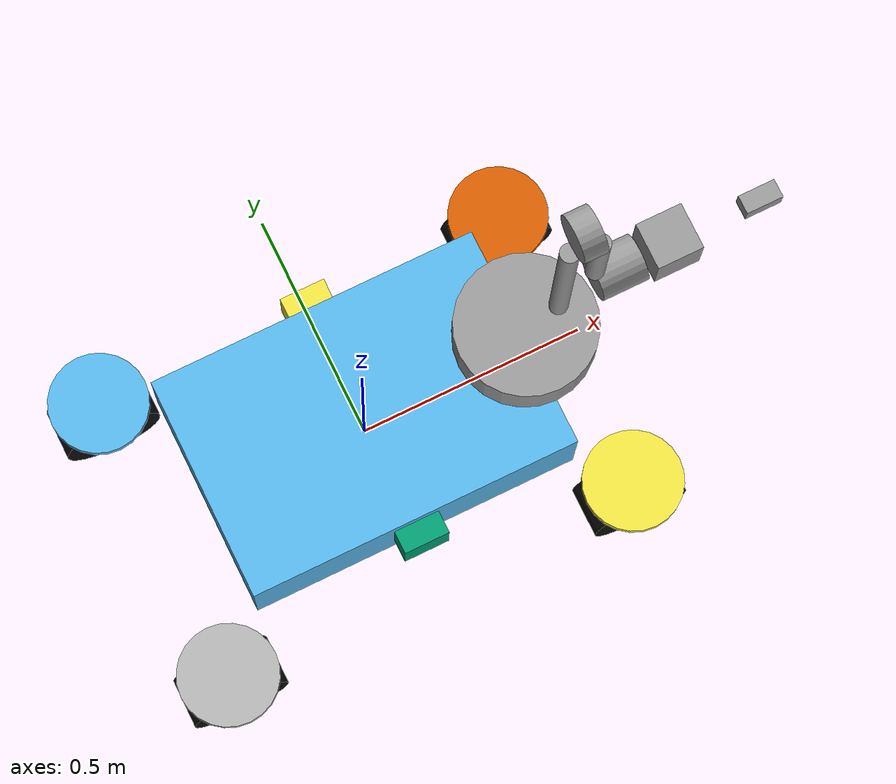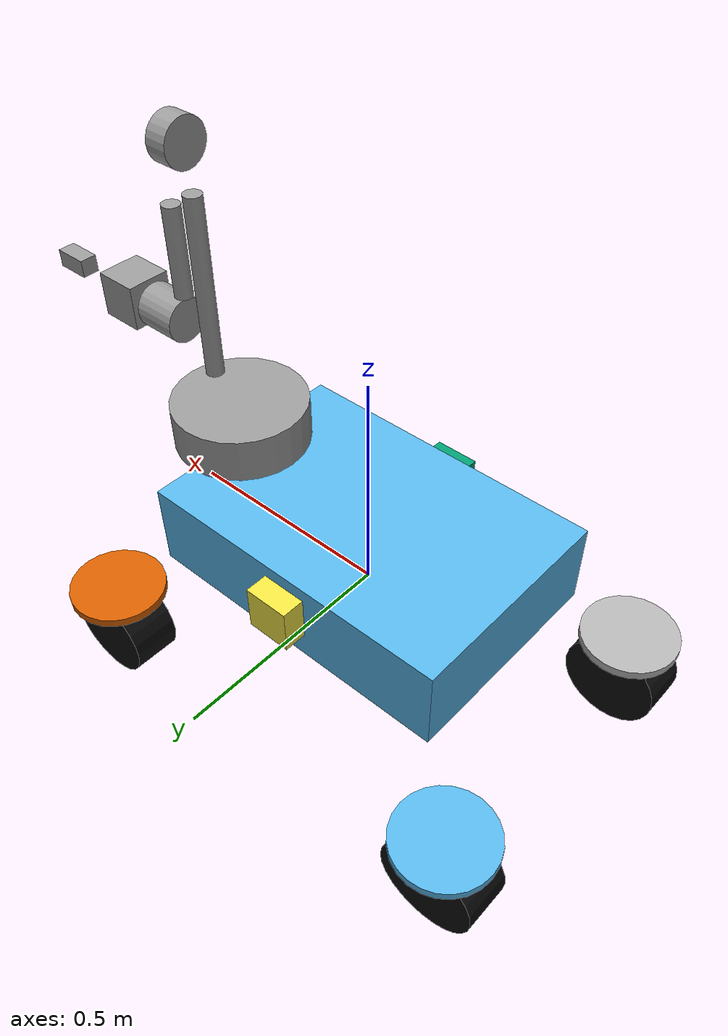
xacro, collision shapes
<?xml version="1.0"?>
<robot xmlns:xacro="http://www.ros.org/wiki/xacro" name="rover">
  <xacro:arg name="can_iface" default="can0"/>
  <xacro:arg name="ros2_control_mode" default="gazebo"/>
  <xacro:arg name="ros2_control_config" default="$(find mr2_rover_description)/config/controllers/rover_controllers.yaml"/>
  <xacro:arg name="enable_manipulator_module" default="true"/>
  <xacro:arg name="enable_autonomous_module" default="true"/>
  <xacro:property name="ros2_control_mode_value" value="$(arg ros2_control_mode)"/>
  <xacro:property name="ros2_control_config_value" value="$(arg ros2_control_config)"/>
  <xacro:property name="can_iface_value" value="$(arg can_iface)"/>
  <xacro:property name="enable_manipulator_module_value" value="$(arg enable_manipulator_module)"/>
  <xacro:property name="enable_autonomous_module_value" value="$(arg enable_autonomous_module)"/>
  <xacro:property name="rover_mesh_prefix" value="file://$(find mr2_rover_description)/meshes/rover"/>
  <xacro:property name="rover_mesh_scale" value="0.01"/>
  <material name="Rubber">
    <color rgba="0.05 0.05 0.05 1.0"/>
  </material>

  <!-- Include component macros -->
  <xacro:include filename="$(find mr2_rover_description)/urdf/rover_base.xacro"/>
  <xacro:include filename="$(find mr2_rover_description)/urdf/swerve_module.xacro"/>
  <xacro:include filename="$(find mr2_rover_description)/urdf/manipulator.xacro"/>
  <xacro:include filename="$(find mr2_rover_description)/ros2_control/rover_can.ros2_control.xacro"/>
  <xacro:include filename="$(find mr2_rover_description)/ros2_control/rover_gazebo.ros2_control.xacro"/>
  <xacro:include filename="$(find mr2_rover_description)/urdf/rover_gazebo_sensors.xacro"/>
  <!-- Chassis -->
  <xacro:rover_base enable_autonomous_module="${enable_autonomous_module_value}"/>
  <!-- Four modules -->
  <xacro:swerve_module prefix="fr" parent="right_rocker" xyz=" 0.476931 -0.0797 -0.18" direction="1"/>
  <xacro:swerve_module prefix="fl" parent="left_rocker" xyz=" 0.476931 0.0797 -0.18" direction="-1"/>
  <xacro:swerve_module prefix="rr" parent="right_rocker" xyz="-0.476931 -0.0797 -0.18" direction="1"/>
  <xacro:swerve_module prefix="rl" parent="left_rocker" xyz="-0.476931 0.0797 -0.18" direction="-1"/>
  <!-- Manipulator -->
  <xacro:if value="${enable_manipulator_module_value}">
    <xacro:manipulator/>
  </xacro:if>

  <xacro:if value="${ros2_control_mode_value == 'gazebo'}">
    <xacro:rover_gazebo_sensors ros2_control_config="${ros2_control_config_value}" enable_autonomous_module="${enable_autonomous_module_value}"/>
    <xacro:rover_gazebo_ros2_control name="GazeboSimSystem" ros2_control_config="${ros2_control_config_value}" enable_manipulator_module="${enable_manipulator_module_value}"/>
  </xacro:if>
  <xacro:if value="${ros2_control_mode_value == 'real_hardware'}">
    <xacro:rover_can_ros2_control name="RoverCanSystem" can_iface="${can_iface_value}" enable_manipulator_module="${enable_manipulator_module_value}"/>
  </xacro:if>
</robot>

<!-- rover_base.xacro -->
<robot xmlns:xacro="http://www.ros.org/wiki/xacro">
  <xacro:macro name="rover_base" params="length:=0.73 width:=0.491 height:=0.19 mass:=10 rocker_size:=0.1 rocker_mass:=0.5 joint_effort:=50 joint_vel:=2.0 joint_lim:=1.57 front_camera_pitch:=0.349066 enable_autonomous_module:=true">
    <xacro:property name="enable_autonomous_module_value" value="${enable_autonomous_module}"/>
    <!-- TODO: set as real dimension of the rover (#34) -->
    <link name="base_link"/>

    <link name="base_chassis">
      <inertial>
        <mass value="${mass}"/>
        <inertia ixx="${mass*(width*width + height*height)/12.0}" iyy="${mass*(length*length + height*height)/12.0}" izz="${mass*(length*length + width*width)/12.0}" ixy="0" ixz="0" iyz="0"/>
      </inertial>
      <visual>
        <geometry>
          <mesh filename="${rover_mesh_prefix}/base.obj"
                scale="${rover_mesh_scale} ${rover_mesh_scale} ${rover_mesh_scale}"/>
        </geometry>
        <origin xyz="0 0 0.05"/>
      </visual>
      <xacro:if value="${enable_autonomous_module_value}">
        <visual>
          <geometry>
            <mesh filename="${rover_mesh_prefix}/autonomous_module.obj"
                  scale="${rover_mesh_scale} ${rover_mesh_scale} ${rover_mesh_scale}"/>
          </geometry>
          <origin xyz="0 0 0.05"/>
        </visual>
      </xacro:if>
      <collision>
        <geometry>
          <box size="${length} ${width} ${height}"/>
        </geometry>
        <origin xyz="0 0 ${height/2.0}"/>
      </collision>
    </link>

    <joint name="base_link_to_chassis" type="fixed">
      <parent link="base_link"/>
      <child link="base_chassis"/>
      <origin xyz="0 0 0"/>
    </joint>

    <link name="right_rocker">
      <inertial>
        <origin xyz="0 -${width/2.0} 0"/>
        <mass value="${rocker_mass}"/>
        <inertia ixx="1e-3" ixy="0" ixz="0" iyy="1e-3" iyz="0" izz="1e-3"/>
      </inertial>
      <visual>
        <geometry>
          <mesh filename="${rover_mesh_prefix}/rocker.obj"
                scale="${rover_mesh_scale} ${rover_mesh_scale} ${rover_mesh_scale}"/>
        </geometry>
        <origin xyz="0 ${width/2.0} -0.01"/>
      </visual>
      <collision>
        <geometry>
          <box size="${rocker_size} ${rocker_size} ${rocker_size}"/>
        </geometry>
        <origin xyz="0 0 ${rocker_size/2.0}"/>
      </collision>
    </link>

    <joint name="right_rocker_joint" type="revolute">
      <parent link="base_chassis"/>
      <child link="right_rocker"/>
      <origin xyz="0 -${width/2.0} 0.06" rpy="0 0 0"/>
      <axis xyz="0 1 0"/>
      <dynamics damping="0.1" friction="0.0"/>
      <limit lower="-${joint_lim}" upper="${joint_lim}" effort="${joint_effort}" velocity="${joint_vel}"/>
      <mimic joint="left_rocker_joint" multiplier="-1" offset="0"/>
    </joint>

    <link name="left_rocker">
      <inertial>
        <origin xyz="0 ${width/2.0} 0"/>
        <mass value="${rocker_mass}"/>
        <inertia ixx="1e-3" ixy="0" ixz="0" iyy="1e-3" iyz="0" izz="1e-3"/>
      </inertial>
      <visual>
        <geometry>
          <mesh filename="${rover_mesh_prefix}/rocker.obj"
                scale="${rover_mesh_scale} ${rover_mesh_scale} ${rover_mesh_scale}"/>
        </geometry>
	<origin xyz="0 ${-width/2.0} -0.01" rpy="0 0 3.141592"/>
      </visual>
      <collision>
        <geometry>
          <box size="${rocker_size} ${rocker_size} ${rocker_size}"/>
        </geometry>
        <origin xyz="0 0 ${rocker_size/2.0}"/>
      </collision>
    </link>

    <joint name="left_rocker_joint" type="revolute">
      <parent link="base_chassis"/>
      <child link="left_rocker"/>
      <origin xyz="0 ${width/2.0} 0.06" rpy="0 0 0"/>
      <axis xyz="0 1 0"/>
      <dynamics damping="0.1" friction="0.0"/>
      <limit lower="-${joint_lim}" upper="${joint_lim}" effort="${joint_effort}" velocity="${joint_vel}"/>
    </joint>

    <joint name="right_rocker_joint_mimic" type="fixed">
      <parent link="base_chassis" />
      <child link="dummy_link" />
    </joint>

    <link name="dummy_link"/>

    <link name="right_gnss"/>
    <joint name="base_to_right_gnss" type="fixed">
      <origin xyz="0 ${-width/2.0} 0" rpy="0 0 0"/>
      <parent link="base_chassis"/>
      <child link="right_gnss"/>
    </joint>

    <link name="left_gnss"/>
    <joint name="base_to_left_gnss" type="fixed">
      <origin xyz="0 ${width/2.0} 0" rpy="0 0 0"/>
      <parent link="base_chassis"/>
      <child link="left_gnss"/>
    </joint>

    <link name="rgbd_camera"/>
    <joint name="base_to_rgbd_camera" type="fixed">
      <origin xyz="${length/2.0 + 0.14} 0 0" rpy="0 ${front_camera_pitch} 0"/> <!-- For Gazebo rendering, add 1cm to 0.14 -->
      <parent link="base_chassis"/>
      <child link="rgbd_camera"/>
    </joint>

    <xacro:if value="${enable_autonomous_module_value}">
      <link name="front_camera"/>
      <joint name="base_to_front_camera" type="fixed">
        <origin xyz="0.3476 0 0.438" rpy="0 0 0"/>
        <parent link="base_chassis"/>
        <child link="front_camera"/>
      </joint>

      <!-- Optical frame for the front UVC camera (REP 103): x right, y down, z forward -->
      <link name="front_camera_optical_frame"/>
      <joint name="front_camera_to_optical" type="fixed">
        <origin xyz="0 0 0" rpy="-1.57079632679 0 -1.57079632679"/>
        <parent link="front_camera"/>
        <child link="front_camera_optical_frame"/>
      </joint>
    </xacro:if>

    <!-- IMU mounted at the top of the base box -->
    <link name="imu_link"/>
    <joint name="base_to_imu" type="fixed">
      <origin xyz="0 0 0" rpy="0 0 0"/>
      <parent link="base_chassis"/>
      <child link="imu_link"/>
    </joint>

  </xacro:macro>
</robot>

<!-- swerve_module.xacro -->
<robot xmlns:xacro="http://www.ros.org/wiki/xacro">
  <xacro:macro name="swerve_module" params="prefix parent xyz">

    <!-- local constants -->
    <xacro:property name="steer_limit" value="3.14"/>
    <xacro:property name="wheel_limit" value="20.0"/>
    <xacro:property name="wheel_radius" value="0.11"/>
    <xacro:property name="wheel_width" value="0.11"/>

    <!-- Steering link -->
    <link name="${prefix}_mount">
      <inertial>
        <mass value="0.5"/>
        <inertia ixx="1e-3" ixy="0" ixz="0" iyy="1e-3" iyz="0" izz="1e-3"/>
      </inertial>
      <visual>
        <geometry>
          <cylinder radius="0.11" length="0.02"/>
        </geometry>
      </visual>
      <collision>
        <geometry>
          <cylinder radius="0.11" length="0.02"/>
        </geometry>
      </collision>
    </link>

    <!-- Wheel link -->
    <link name="${prefix}_wheel">
      <inertial>
        <mass value="0.2"/>
        <inertia ixx="1e-3" ixy="0" ixz="0" iyy="1e-3" iyz="0" izz="1e-3"/>
      </inertial>
      <visual>
        <origin xyz="0 0 0" rpy="1.5708 0 0"/>
        <geometry>
          <cylinder radius="${wheel_radius}" length="${wheel_width}"/>
        </geometry>
        <material name="Rubber"/>
      </visual>
      <collision>
        <origin xyz="0 0 0" rpy="1.5708 0 0"/>
        <geometry>
          <cylinder radius="${wheel_radius}" length="${wheel_width}"/>
        </geometry>
      </collision>
    </link>

    <!-- Steering joint -->
    <joint name="${prefix}_steering_joint" type="continuous">
      <parent link="${parent}"/>
      <child link="${prefix}_mount"/>
      <origin xyz="${xyz}" rpy="0 0 0"/>
      <axis xyz="0 0 1"/>
      <limit effort="5" velocity="${steer_limit}"/>
    </joint>

    <!-- Wheel-spin joint -->
    <joint name="${prefix}_wheel_joint" type="continuous">
      <parent link="${prefix}_mount"/>
      <child link="${prefix}_wheel"/>
      <origin xyz="0 0 -${wheel_radius}" rpy="0 0 0"/>
      <axis xyz="0 1 0"/>
      <limit effort="5" velocity="${wheel_limit}"/>
    </joint>
  </xacro:macro>
</robot>

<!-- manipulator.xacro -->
<robot xmlns:xacro="http://www.ros.org/wiki/xacro">
  <!-- Joint limits (shared with ros2_control config) -->
  <xacro:property name="arm_j1_lower_limit" value="-3.4906585040"/>
  <xacro:property name="arm_j1_upper_limit" value="3.4906585040"/>
  <xacro:property name="arm_j2_lower_limit" value="-0.7853981634"/>
  <xacro:property name="arm_j2_upper_limit" value="1.5707963268"/>
  <xacro:property name="arm_j3_lower_limit" value="-1.7453292520"/>
  <xacro:property name="arm_j3_upper_limit" value="0.0"/>
  <xacro:property name="arm_j4_lower_limit" value="-3.4906585040"/>
  <xacro:property name="arm_j4_upper_limit" value="3.4906585040"/>
  <xacro:property name="arm_j5_lower_limit" value="0.0"/>
  <xacro:property name="arm_j5_upper_limit" value="3.4906585040"/>
  <xacro:property name="arm_j6_lower_limit" value="-3.1415926536"/>
  <xacro:property name="arm_j6_upper_limit" value="3.1415926536"/>
  <xacro:property name="arm_gripper_lower_limit" value="0.0"/>
  <xacro:property name="arm_gripper_upper_limit" value="1.3089969390"/>
  <!-- Shared shaded material for STL visuals (prevents unlit white appearance) -->
  <material name="ArmGrey">
    <color rgba="0.6 0.6 0.6 1.0"/>
  </material>
  <!-- Use file:// URI for meshes so both RViz (resource_retriever) and Gazebo resolve correctly -->
  <xacro:property name="manipulator_mesh_prefix" value="file://$(find mr2_rover_description)/meshes/manipulator"/>
  <xacro:property name="manipulator_mesh_scale" value="0.001"/>

  <xacro:macro name="manipulator" params="length:=0.73 width:=0.49 height:=0.19">
    <link name="arm_l1">
      <inertial>
        <mass value="0.1"/>
        <inertia ixx="0.1" iyy="0.1" izz="0.1" ixy="0" ixz="0" iyz="0"/>
      </inertial>
      <visual>
        <geometry>
          <mesh filename="${manipulator_mesh_prefix}/rover_manipulator_link1.stl"
                scale="${manipulator_mesh_scale} ${manipulator_mesh_scale} ${manipulator_mesh_scale}"/>
        </geometry>
        <origin xyz="0 0 0.032" rpy="0 0 3.1415926536"/>
        <material name="ArmGrey"/>
      </visual>
      <collision>
        <geometry>
          <cylinder radius="0.15" length="0.1"/>
        </geometry>
        <origin xyz="0 0 0.05"/>
      </collision>
    </link>
    <link name="arm_l2">
      <inertial>
        <mass value="0.1"/>
        <inertia ixx="0.1" iyy="0.1" izz="0.1" ixy="0" ixz="0" iyz="0"/>
      </inertial>
      <visual>
        <geometry>
          <mesh filename="${manipulator_mesh_prefix}/rover_manipulator_link2.stl"
                scale="${manipulator_mesh_scale} ${manipulator_mesh_scale} ${manipulator_mesh_scale}"/>
        </geometry>
        <origin xyz="-0.070 0 -0.104" rpy="0 0 3.1415926536"/>
        <material name="ArmGrey"/>
      </visual>
      <collision>
        <geometry>
          <cylinder radius="0.02" length="0.4"/>
        </geometry>
        <origin xyz="0 0 0.2"/>
      </collision>
    </link>
    <link name="arm_l3">
      <inertial>
        <mass value="0.1"/>
        <inertia ixx="0.1" iyy="0.1" izz="0.1" ixy="0" ixz="0" iyz="0"/>
      </inertial>
      <visual>
        <geometry>
          <mesh filename="${manipulator_mesh_prefix}/rover_manipulator_link3.stl"
                scale="${manipulator_mesh_scale} ${manipulator_mesh_scale} ${manipulator_mesh_scale}"/>
        </geometry>
        <origin xyz="-0.070 0.0001 -0.599" rpy="0 0 3.1415926536"/>
        <material name="ArmGrey"/>
      </visual>
      <collision>
        <geometry>
          <cylinder radius="0.05" length="0.05"/>
        </geometry>
        <origin xyz="0.025 0 0" rpy="0 -1.571 0"/>
      </collision>
    </link>
    <link name="arm_l4">
      <inertial>
        <mass value="0.1"/>
        <inertia ixx="0.1" iyy="0.1" izz="0.1" ixy="0" ixz="0" iyz="0"/>
      </inertial>
      <visual>
        <geometry>
          <mesh filename="${manipulator_mesh_prefix}/rover_manipulator_link4.stl"
                scale="${manipulator_mesh_scale} ${manipulator_mesh_scale} ${manipulator_mesh_scale}"/>
        </geometry>
        <origin xyz="-0.140 0.000 -0.461" rpy="0 0 3.1415926536"/>
        <material name="ArmGrey"/>
      </visual>
      <collision>
        <geometry>
          <cylinder radius="0.02" length="0.2"/>
        </geometry>
        <origin xyz="0 0 -0.1"/>
      </collision>
    </link>
    <link name="arm_l5">
      <inertial>
        <mass value="0.1"/>
        <inertia ixx="0.1" iyy="0.1" izz="0.1" ixy="0" ixz="0" iyz="0"/>
      </inertial>
      <visual>
        <geometry>
          <mesh filename="${manipulator_mesh_prefix}/rover_manipulator_link5.stl"
                scale="${manipulator_mesh_scale} ${manipulator_mesh_scale} ${manipulator_mesh_scale}"/>
        </geometry>
        <origin xyz="-0.140 0.000 -0.201" rpy="0 0 3.1415926536"/>
        <material name="ArmGrey"/>
      </visual>
      <collision>
        <geometry>
          <cylinder radius="0.05" length="0.1"/>
        </geometry>
        <origin xyz="0.05 0 0" rpy="0 -1.571 0"/>
      </collision>
    </link>
    <link name="arm_l6">
      <inertial>
        <mass value="0.1"/>
        <inertia ixx="0.1" iyy="0.1" izz="0.1" ixy="0" ixz="0" iyz="0"/>
      </inertial>
      <visual>
        <geometry>
          <box size="0.1 0.1 0.1"/>
        </geometry>
        <origin xyz="0.05 0 0" rpy="0 0 0"/>
        <material name="ArmGrey"/>
      </visual>
      <collision>
        <geometry>
          <box size="0.1 0.1 0.1"/>
        </geometry>
        <origin xyz="0.05 0 0" rpy="0 0 0"/>
      </collision>
    </link>
    <joint name="arm_j1" type="revolute">
      <parent link="base_link"/>
      <child link="arm_l1"/>
      <origin xyz="${length/2.0} 0 ${height}" rpy="0 0 0"/>
      <axis xyz="0 0 1"/>
      <limit lower="${arm_j1_lower_limit}" upper="${arm_j1_upper_limit}" effort="50" velocity="1.0"/>
    </joint>
    <joint name="arm_j2" type="revolute">
      <parent link="arm_l1"/>
      <child link="arm_l2"/>
      <origin xyz="0.070 0 0.136" rpy="0 0 0"/>
      <axis xyz="0 1 0"/>
      <limit lower="${arm_j2_lower_limit}" upper="${arm_j2_upper_limit}" effort="50" velocity="1.0"/>
    </joint>
    <joint name="arm_j3" type="revolute">
      <parent link="arm_l2"/>
      <child link="arm_l3"/>
      <origin xyz="0 0 0.495" rpy="0 0 0"/>
      <axis xyz="0 1 0"/>
      <limit lower="${arm_j3_lower_limit}" upper="${arm_j3_upper_limit}" effort="50" velocity="1.0"/>
    </joint>
    <joint name="arm_j4" type="revolute">
      <parent link="arm_l3"/>
      <child link="arm_l4"/>
      <origin xyz="0.070 0 -0.138" rpy="0 0 0"/>
      <axis xyz="0 0 1"/>
      <limit lower="${arm_j4_lower_limit}" upper="${arm_j4_upper_limit}" effort="50" velocity="1.0"/>
    </joint>
    <joint name="arm_j5" type="revolute">
      <parent link="arm_l4"/>
      <child link="arm_l5"/>
      <origin xyz="0 0 -0.260" rpy="0 0 0"/>
      <axis xyz="0 1 0"/>
      <limit lower="${arm_j5_lower_limit}" upper="${arm_j5_upper_limit}" effort="50" velocity="1.0"/>
    </joint>
    <joint name="arm_j6" type="revolute">
      <parent link="arm_l5"/>
      <child link="arm_l6"/>
      <origin xyz="0.116 0 0" rpy="0 0 0"/>
      <axis xyz="1 0 0"/>
      <limit lower="${arm_j6_lower_limit}" upper="${arm_j6_upper_limit}" effort="50" velocity="1.0"/>
    </joint>
    <link name="eef_link"/>
    <joint name="arm_l6_to_eef" type="fixed">
      <parent link="arm_l6"/>
      <child link="eef_link"/>
      <origin xyz="0.215 0 0" rpy="0 0 0"/>
    </joint>
    <link name="gripper_link">
      <visual>
        <geometry>
          <box size="0.08 0.04 0.04"/>
        </geometry>
        <origin xyz="0.04 0 0" rpy="0 0 0"/>
        <material name="ArmGrey"/>
      </visual>
      <collision>
        <geometry>
          <box size="0.08 0.04 0.04"/>
        </geometry>
        <origin xyz="0.04 0 0" rpy="0 0 0"/>
      </collision>
    </link>
    <joint name="arm_gripper" type="revolute">
      <parent link="eef_link"/>
      <child link="gripper_link"/>
      <origin xyz="0 0 0" rpy="0 0 0"/>
      <axis xyz="0 0 1"/>
      <limit lower="${arm_gripper_lower_limit}" upper="${arm_gripper_upper_limit}" effort="20" velocity="2.0"/>
    </joint>
  </xacro:macro>
</robot>

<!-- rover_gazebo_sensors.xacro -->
<robot xmlns:xacro="http://www.ros.org/wiki/xacro">

  <xacro:macro name="rover_gazebo_sensors" params="ros2_control_config enable_autonomous_module:=true">
    <xacro:property name="enable_autonomous_module_value" value="${enable_autonomous_module}"/>
    <!-- ros2_control plugin that loads the TwistToCommands controller -->
    <gazebo>
      <plugin filename="gz_ros2_control-system" name="gz_ros2_control::GazeboSimROS2ControlPlugin">
        <robot_param>robot_description</robot_param>
        <robot_param_node>robot_state_publisher</robot_param_node>
        <parameters>${ros2_control_config}</parameters>
      </plugin>
    </gazebo>

    <gazebo reference="left_gnss">
      <sensor name="left_gnss_sensor" type="navsat">
        <always_on>1</always_on>
        <update_rate>1</update_rate>
        <visualize>true</visualize>
        <topic>left_gnss/navsat</topic>
        <ignition_frame_id>left_gnss</ignition_frame_id>
      </sensor>
    </gazebo>

    <gazebo reference="right_gnss">
      <sensor name="right_gnss_sensor" type="navsat">
        <always_on>1</always_on>
        <update_rate>1</update_rate>
        <visualize>true</visualize>
        <topic>right_gnss/navsat</topic>
        <ignition_frame_id>right_gnss</ignition_frame_id>
      </sensor>
    </gazebo>

    <gazebo reference="rgbd_camera">
      <sensor name="rgbd_camera_sensor" type="rgbd_camera">
        <update_rate>30</update_rate>
        <always_on>1</always_on>
        <visualize>true</visualize>
        <topic>rgbd_camera</topic>
        <ignition_frame_id>rgbd_camera</ignition_frame_id>
        <camera>
          <horizontal_fov>1.5184</horizontal_fov>
          <lens>
            <intrinsics>
              <!-- fx = fy = width / ( 2 * tan (hfov / 2 ) ) -->
              <fx>277.12735</fx>
              <fy>277.12735</fy>
              <!-- cx = ( width + 1 ) / 2 -->
              <cx>160.5</cx>
              <!-- cy = ( height + 1 ) / 2 -->
              <cy>120.5</cy>
              <s>0</s>
            </intrinsics>
          </lens>
          <distortion>
            <k1>0.0</k1>
            <k2>0.0</k2>
            <k3>0.0</k3>
            <p1>0.0</p1>
            <p2>0.0</p2>
            <center>0.5 0.5</center>
          </distortion>
          <image>
            <width>320</width>
            <height>180</height>
	    <anti_aliasing>4</anti_aliasing>
            <format>R8G8B8</format>
          </image>
          <clip>
            <near>0.3</near>
            <far>3.0</far>
          </clip>
          <depth_camera>
            <clip>
              <near>0.3</near>
              <far>3.0</far>
            </clip>
          </depth_camera>
          <noise>
            <type>gaussian</type>
            <mean>0</mean>
            <stddev>0.007</stddev>
          </noise>
        </camera>
      </sensor>
    </gazebo>

    <xacro:if value="${enable_autonomous_module_value}">
      <gazebo reference="front_camera">
        <sensor name="front_camera_sensor" type="rgbd_camera">
          <update_rate>30</update_rate>
          <always_on>1</always_on>
          <visualize>true</visualize>
          <topic>front_camera</topic>
          <ignition_frame_id>front_camera_optical_frame</ignition_frame_id>
          <camera>
            <horizontal_fov>1.5184</horizontal_fov>
            <lens>
              <intrinsics>
                <!-- fx = fy = width / ( 2 * tan (hfov / 2 ) ) -->
                <fx>277.12735</fx>
                <fy>277.12735</fy>
                <!-- cx = ( width + 1 ) / 2 -->
                <cx>160.5</cx>
                <!-- cy = ( height + 1 ) / 2 -->
                <cy>120.5</cy>
                <s>0</s>
              </intrinsics>
            </lens>
            <distortion>
              <k1>0.0</k1>
              <k2>0.0</k2>
              <k3>0.0</k3>
              <p1>0.0</p1>
              <p2>0.0</p2>
              <center>0.5 0.5</center>
            </distortion>
            <image>
              <width>320</width>
              <height>180</height>
              <anti_aliasing>4</anti_aliasing>
              <format>R8G8B8</format>
            </image>
            <clip>
              <near>0.3</near>
              <far>3.0</far>
            </clip>
            <depth_camera>
              <clip>
                <near>0.3</near>
                <far>3.0</far>
              </clip>
            </depth_camera>
            <noise>
              <type>gaussian</type>
              <mean>0</mean>
              <stddev>0.007</stddev>
            </noise>
          </camera>
        </sensor>
      </gazebo>
    </xacro:if>

    <gazebo reference="imu_link">
      <sensor name="imu_sensor" type="imu">
        <always_on>1</always_on>
        <update_rate>60</update_rate>
        <visualize>false</visualize>
        <topic>imu</topic>
        <ignition_frame_id>imu_link</ignition_frame_id>
      </sensor>
    </gazebo>
  </xacro:macro>

</robot>
